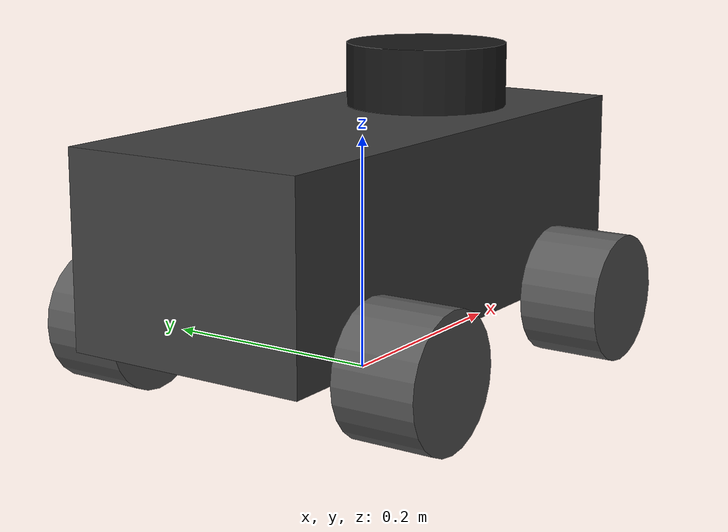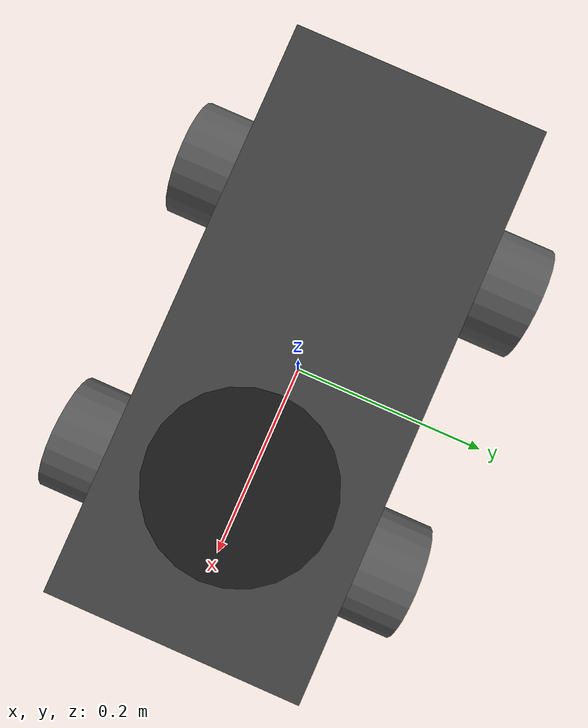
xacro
<?xml version="1.0"?>
<!-- URDF of Robot Simulation -->
<robot xmlns:xacro="http://www.ros.org/wiki/xacro"  name="bot_ackermann">
    <!-- Physical Description -->
    <xacro:include filename="bot_sample.xacro" />
    <!-- Simulation -->
</robot>

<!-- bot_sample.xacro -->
<robot xmlns:xacro="http://www.ros.org/wiki/xacro" name="maverick_quantum_xt">

    <!-- ROBOT PROPERTIES -->
    <xacro:property name="body_mass" value="1.58" />
    <xacro:property name="body_length" value="0.475" />
    <xacro:property name="body_width" value="0.21" />
    <xacro:property name="body_height" value="0.160" />

    <xacro:property name="wheelbase" value="0.285" />
    <xacro:property name="track_width" value="0.280" />

    <xacro:property name="wheel_radius" value="0.055" />
    <xacro:property name="wheel_thickness" value="0.070" />
    <xacro:property name="wheel_mass" value="0.12" />
    <xacro:property name="steering_mass" value="0.02" />

    <!-- max steering = 45 deg -->
    <xacro:property name="max_steering_angle" value="${pi/4}" />

    <xacro:property name="lidar_radius" value="0.070" />
    <xacro:property name="lidar_height" value="0.055" />
    <xacro:property name="lidar_mass" value="0.05" />

    <!-- Derived properties -->
    <xacro:property name="half_body_length" value="${body_length / 2}" />
    <xacro:property name="half_body_height" value="${body_height / 2}" />

    <xacro:property name="half_track_width" value="${track_width / 2}" />
    <xacro:property name="front_axle_offset" value="${wheelbase / 2}" />
    <xacro:property name="rear_axle_offset" value="${-wheelbase / 2}" />

    <!-- BASE FOOTPRINT -->
    <link name="base_footprint">
    </link>

    <!-- BASE LINK -->
    <link name="base_link">
    </link>

    <joint name="base_joint" type="fixed">
        <parent link="base_footprint" />
        <child link="base_link" />
        <origin xyz="0.0 0.0 0.0" rpy="0 0 0" />
    </joint>

    <!-- CHASSIS LINK -->
    <link name="chassis_link">
        <inertial>
            <origin xyz="0.0 0.0 0.0" rpy="0 0 0" />
            <mass value="${body_mass}" />
            <inertia
                ixx="${body_mass/12 * (body_width*body_width + body_height*body_height)}"
                ixy="0" ixz="0"
                iyy="${body_mass/12 * (body_length*body_length + body_height*body_height)}"
                iyz="0"
                izz="${body_mass/12 * (body_length*body_length + body_width*body_width)}" />
        </inertial>

        <visual>
            <origin xyz="0 0 0" rpy="0 0 0" />
            <geometry>
                <box size="${body_length} ${body_width} ${body_height}" />
            </geometry>
            <material name="red">
                <color rgba="0.25 0.25 0.25 1.0"/>
            </material>
        </visual>

        <collision>
            <origin xyz="0 0 0" rpy="0 0 0" />
            <geometry>
                <box size="${body_length} ${body_width} ${body_height}" />
            </geometry>
        </collision>
    </link>

    <joint name="chassis_joint" type="fixed">
        <parent link="base_link" />
        <child link="chassis_link" />
        <!-- chassis center height so wheel centers end up at wheel_radius above ground -->
        <origin xyz=" 0.0 0.0 ${wheel_radius + body_height/2}" rpy="0 0 0" />
    </joint>

    <!-- FRONT LEFT STEERING LINK -->
    <link name="fr_left_steer_link">
        <inertial>
            <origin xyz="0 0 0" rpy="0 0 0" />
            <mass value="${steering_mass}" />
            <inertia
                ixx="${steering_mass/12*(3*wheel_radius*wheel_radius + wheel_thickness*wheel_thickness)}"
                ixy="0" ixz="0"
                iyy="${steering_mass/12*(3*wheel_radius*wheel_radius + wheel_thickness*wheel_thickness)}"
                iyz="0"
                izz="${steering_mass/2 * wheel_radius*wheel_radius}" />
        </inertial>

        <!-- Simple visual so it shows in RViz/Gazebo -->
        <visual>
            <origin xyz="0 0 0" rpy="0 0 0" />
            <geometry>
                <cylinder radius="0.01" length="0.03"/>
            </geometry>
            <material name="steer_red">
                <color rgba="0.8 0.1 0.1 1"/>
            </material>
        </visual>
    </link>

    <joint name="fr_left_steer_joint" type="revolute">
        <parent link="chassis_link" />
        <child link="fr_left_steer_link" />
        <origin xyz="${front_axle_offset} ${half_track_width} ${-body_height/2}" rpy="0 0 0" />
        <axis xyz="0 0 1" />
        <limit upper="${max_steering_angle}" lower="${-max_steering_angle}" effort="10.0" velocity="5.0" />
    </joint>

    <!-- FRONT LEFT WHEEL -->
    <link name="fr_left_wheel_link">
        <inertial>
            <origin xyz="0 0 0" rpy="0 0 0" />
            <mass value="${wheel_mass}" />
            <inertia
                ixx="${wheel_mass/12*(3*wheel_radius*wheel_radius + wheel_thickness*wheel_thickness)}"
                ixy="0" ixz="0"
                iyy="${wheel_mass/12*(3*wheel_radius*wheel_radius + wheel_thickness*wheel_thickness)}"
                iyz="0"
                izz="${wheel_mass/2 * wheel_radius*wheel_radius}" />
        </inertial>

        <visual>
            <origin xyz="0 0 0" rpy="0 0 0" />
            <geometry>
                <cylinder radius="${wheel_radius}" length="${wheel_thickness}" />
            </geometry>
            <material name="wheel_dark">
                <color rgba="0.35 0.35 0.35 1"/>
            </material>
        </visual>

        <collision>
            <origin xyz="0 0 0" rpy="0 0 0" />
            <geometry>
                <cylinder radius="${wheel_radius}" length="${wheel_thickness}" />
            </geometry>
        </collision>
    </link>

    <joint name="fr_left_wheel_joint" type="continuous">
        <parent link="fr_left_steer_link" />
        <child link="fr_left_wheel_link" />
        <origin xyz="0 0 0" rpy="${pi/2} 0 0" />
        <axis xyz="0 0 -1" />
        <dynamics friction="0.8" damping="0.5" />
        <limit lower="-3.14159" upper="3.14159" effort="70" velocity="-1" />
    </joint>

    <!-- FRONT RIGHT STEERING LINK -->
    <link name="fr_right_steer_link">
        <inertial>
            <origin xyz="0 0 0" rpy="0 0 0" />
            <mass value="${steering_mass}" />
            <inertia
                ixx="${steering_mass/12*(3*wheel_radius*wheel_radius + wheel_thickness*wheel_thickness)}"
                ixy="0" ixz="0"
                iyy="${steering_mass/12*(3*wheel_radius*wheel_radius + wheel_thickness*wheel_thickness)}"
                iyz="0"
                izz="${steering_mass/2 * wheel_radius*wheel_radius}" />
        </inertial>

        <!-- Simple visual so it shows in RViz/Gazebo -->
        <visual>
            <origin xyz="0 0 0" rpy="0 0 0" />
            <geometry>
                <cylinder radius="0.01" length="0.03"/>
            </geometry>
            <material name="steer_red2">
                <color rgba="0.8 0.1 0.1 1"/>
            </material>
        </visual>
    </link>

    <joint name="fr_right_steer_joint" type="revolute">
        <parent link="chassis_link" />
        <child link="fr_right_steer_link" />
        <origin xyz="${front_axle_offset} ${-half_track_width} ${-body_height/2}" rpy="0 0 0" />
        <axis xyz="0 0 1" />
        <limit upper="${max_steering_angle}" lower="${-max_steering_angle}" effort="10.0" velocity="5.0" />
    </joint>

    <!-- FRONT RIGHT WHEEL -->
    <link name="fr_right_wheel_link">
        <inertial>
            <origin xyz="0 0 0" rpy="0 0 0" />
            <mass value="${wheel_mass}" />
            <inertia
                ixx="${wheel_mass/12*(3*wheel_radius*wheel_radius + wheel_thickness*wheel_thickness)}"
                ixy="0" ixz="0"
                iyy="${wheel_mass/12*(3*wheel_radius*wheel_radius + wheel_thickness*wheel_thickness)}"
                iyz="0"
                izz="${wheel_mass/2 * wheel_radius*wheel_radius}" />
        </inertial>

        <visual>
            <origin xyz="0 0 0" rpy="0 0 0" />
            <geometry>
                <cylinder radius="${wheel_radius}" length="${wheel_thickness}" />
            </geometry>
            <material name="wheel_dark2">
                <color rgba="0.35 0.35 0.35 1"/>
            </material>
        </visual>

        <collision>
            <origin xyz="0 0 0" rpy="0 0 0" />
            <geometry>
                <cylinder radius="${wheel_radius}" length="${wheel_thickness}" />
            </geometry>
        </collision>
    </link>

    <joint name="fr_right_wheel_joint" type="continuous">
        <parent link="fr_right_steer_link" />
        <child link="fr_right_wheel_link" />
        <origin xyz="0 0 0" rpy="${-pi/2} 0 0" />
        <axis xyz="0 0 1" />
        <dynamics friction="0.8" damping="0.5" />
        <limit lower="-3.14159" upper="3.14159" effort="70" velocity="-1" />
    </joint>

    <!-- REAR LEFT WHEEL -->
    <link name="re_left_wheel_link">
        <inertial>
            <origin xyz="0 0 0" rpy="0 0 0" />
            <mass value="${wheel_mass}" />
            <inertia
                ixx="${wheel_mass/12*(3*wheel_radius*wheel_radius + wheel_thickness*wheel_thickness)}"
                ixy="0" ixz="0"
                iyy="${wheel_mass/12*(3*wheel_radius*wheel_radius + wheel_thickness*wheel_thickness)}"
                iyz="0"
                izz="${wheel_mass/2 * wheel_radius*wheel_radius}" />
        </inertial>

        <visual>
            <origin xyz="0 0 0" rpy="0 0 0" />
            <geometry>
                <cylinder radius="${wheel_radius}" length="${wheel_thickness}" />
            </geometry>
            <material name="wheel_dark3">
                <color rgba="0.35 0.35 0.35 1"/>
            </material>
        </visual>

        <collision>
            <origin xyz="0 0 0" rpy="0 0 0" />
            <geometry>
                <cylinder radius="${wheel_radius}" length="${wheel_thickness}" />
            </geometry>
        </collision>
    </link>

    <joint name="re_left_wheel_joint" type="continuous">
        <parent link="chassis_link" />
        <child link="re_left_wheel_link" />
        <origin xyz="${rear_axle_offset} ${half_track_width} ${-body_height/2}" rpy="${pi/2} 0 0" />
        <axis xyz="0 0 -1" />
        <dynamics friction="0.8" damping="0.5" />
        <limit lower="-3.14159" upper="3.14159" effort="70" velocity="-1" />
    </joint>

    <!-- REAR RIGHT WHEEL -->
    <link name="re_right_wheel_link">
        <inertial>
            <origin xyz="0 0 0" rpy="0 0 0" />
            <mass value="${wheel_mass}" />
            <inertia
                ixx="${wheel_mass/12*(3*wheel_radius*wheel_radius + wheel_thickness*wheel_thickness)}"
                ixy="0" ixz="0"
                iyy="${wheel_mass/12*(3*wheel_radius*wheel_radius + wheel_thickness*wheel_thickness)}"
                iyz="0"
                izz="${wheel_mass/2 * wheel_radius*wheel_radius}" />
        </inertial>

        <visual>
            <origin xyz="0 0 0" rpy="0 0 0" />
            <geometry>
                <cylinder radius="${wheel_radius}" length="${wheel_thickness}" />
            </geometry>
            <material name="wheel_dark4">
                <color rgba="0.35 0.35 0.35 1"/>
            </material>
        </visual>

        <collision>
            <origin xyz="0 0 0" rpy="0 0 0" />
            <geometry>
                <cylinder radius="${wheel_radius}" length="${wheel_thickness}" />
            </geometry>
        </collision>
    </link>

    <joint name="re_right_wheel_joint" type="continuous">
        <parent link="chassis_link" />
        <child link="re_right_wheel_link" />
        <origin xyz="${rear_axle_offset} ${-half_track_width} ${-body_height/2}" rpy="${-pi/2} 0 0" />
        <axis xyz="0 0 1" />
        <dynamics friction="0.8" damping="0.5" />
        <limit lower="-3.14159" upper="3.14159" effort="70" velocity="-1" />
    </joint>

    <!-- LIDAR LINK -->
    <link name="laser_link">
        <inertial>
            <origin xyz="0 0 0" rpy="0 0 0" />
            <mass value="${lidar_mass}" />
            <inertia
                ixx="${lidar_mass/12*(3*lidar_radius*lidar_radius + lidar_height*lidar_height)}"
                ixy="0" ixz="0"
                iyy="${lidar_mass/12*(3*lidar_radius*lidar_radius + lidar_height*lidar_height)}"
                iyz="0"
                izz="${lidar_mass/2 * lidar_radius*lidar_radius}" />
        </inertial>

        <visual>
            <origin xyz="0 0 0" rpy="0 0 0" />
            <geometry>
                <cylinder radius="${lidar_radius}" length="${lidar_height}" />
            </geometry>
            <material name="lidar_black">
                <color rgba="0.1 0.1 0.1 1" />
            </material>
        </visual>

        <collision>
            <origin xyz="0 0 0" rpy="0 0 0" />
            <geometry>
                <cylinder radius="${lidar_radius}" length="${lidar_height}" />
            </geometry>
        </collision>
    </link>

    <joint name="laser_joint" type="fixed">
        <parent link="chassis_link" />
        <child link="laser_link" />
        <!-- LiDAR at front edge + its radius, sitting on top surface -->
        <origin xyz=" 0.1 0.0 ${body_height/2 + lidar_height/2}" rpy="0 0 0" />
    </joint>

    <!-- VIRTUAL STEERING WHEEL -->
    <link name="virtual_steer_link">
        <visual>
            <origin xyz="0.0 0.0 0.0" rpy="0.0 0.0 0.0" />
            <geometry>
                <box size="0.01 0.15 0.075" />
            </geometry>
            <material name="yellow">
                <color rgba="1.0 1.0 0.0 1" />
            </material>
        </visual>
        <inertial>
            <origin xyz="0.0 0.0 0.0" rpy="0.0 0.0 0.0" />
            <mass value="0.001" />
            <inertia ixx="0.0001" ixy="0.0" ixz="0.0"
                     iyy="0.0001" iyz="0.0" izz="0.0001" />
        </inertial>
    </link>

    <joint name="virtual_steering_wheel_joint" type="revolute">
        <origin xyz="${-body_length/2 + 0.05} 0.0 0.0" rpy="0.0 0.0 0.0" />
        <parent link="chassis_link" />
        <child link="virtual_steer_link" />
        <axis xyz="-1 0 0" />
        <limit lower="-3" upper="3" effort="200" velocity="20" />
    </joint>

    <!-- GAZEBO PLUGIN CONFIGURATIONS -->

    <!-- Chassis -->
    <gazebo reference="chassis_link">
        <mu1>0.5</mu1>
        <mu2>0.5</mu2>
        <material>Gazebo/Grey</material>
    </gazebo>

    <!-- Steering links -->
    <gazebo reference="fr_left_steer_link">
        <mu1>0.1</mu1>
        <mu2>0.1</mu2>
        <material>Gazebo/Black</material>
    </gazebo>

    <gazebo reference="fr_right_steer_link">
        <mu1>0.1</mu1>
        <mu2>0.1</mu2>
        <material>Gazebo/Black</material>
    </gazebo>

    <!-- Front wheels -->
    <gazebo reference="fr_left_wheel_link">
        <mu1>1.5</mu1>
        <mu2>1.5</mu2>
        <material>Gazebo/DarkGrey</material>
    </gazebo>

    <gazebo reference="fr_right_wheel_link">
        <mu1>1.5</mu1>
        <mu2>1.5</mu2>
        <material>Gazebo/DarkGrey</material>
    </gazebo>

    <!-- Rear wheels -->
    <gazebo reference="re_left_wheel_link">
        <mu1>1.5</mu1>
        <mu2>1.5</mu2>
        <material>Gazebo/DarkGrey</material>
    </gazebo>

    <gazebo reference="re_right_wheel_link">
        <mu1>1.5</mu1>
        <mu2>1.5</mu2>
        <material>Gazebo/DarkGrey</material>
    </gazebo>

    <!-- Virtual steering wheel -->
    <gazebo reference="virtual_steer_link">
        <material>Gazebo/Yellow</material>
    </gazebo>

    <!-- LiDAR -->
    <gazebo reference="laser_link">
        <material>Gazebo/Black</material>

        <sensor name="gpu_lidar" type="gpu_lidar">
            <pose>0 0 0 0 0 0</pose>
            <visualize>true</visualize>
            <update_rate>10</update_rate>
            <always_on>true</always_on>

            <lidar>
                <scan>
                    <horizontal>
                        <samples>360</samples>
                        <resolution>1</resolution>
                        <min_angle>-3.14159</min_angle>
                        <max_angle>3.14159</max_angle>
                    </horizontal>
                </scan>

                <range>
                    <min>0.3</min>
                    <max>12.0</max>
                    <resolution>0.01</resolution>
                </range>

                <noise>
                    <type>gaussian</type>
                    <mean>0.0</mean>
                    <stddev>0.01</stddev>
                </noise>
            </lidar>

            <topic>/scan</topic>
            <frame_id>laser_link</frame_id>
        </sensor>
    </gazebo>

    <!-- JOINT STATE PUBLISHER PLUGIN -->
    <gazebo>
        <plugin filename="gz-sim-joint-state-publisher-system"
            name="gz::sim::systems::JointStatePublisher">
            <topic>joint_states</topic>
            <update_rate>100</update_rate>
            <joint_name>fr_right_steer_joint</joint_name>
            <joint_name>fr_right_wheel_joint</joint_name>
            <joint_name>fr_left_steer_joint</joint_name>
            <joint_name>fr_left_wheel_joint</joint_name>
            <joint_name>re_right_wheel_joint</joint_name>
            <joint_name>re_left_wheel_joint</joint_name>
            <joint_name>virtual_steering_wheel_joint</joint_name>
        </plugin>
    </gazebo>

    <!-- ACKERMANN DRIVE PLUGIN -->
    <gazebo>
        <plugin filename="gz-sim-ackermann-steering-system"
            name="gz::sim::systems::AckermannSteering">

            <!-- Wheel joints -->
            <left_joint>fr_left_wheel_joint</left_joint>
            <left_joint>re_left_wheel_joint</left_joint>
            <right_joint>fr_right_wheel_joint</right_joint>
            <right_joint>re_right_wheel_joint</right_joint>
            <!-- Steering joints -->
            <left_steering_joint>fr_left_steer_joint</left_steering_joint>
            <right_steering_joint>fr_right_steer_joint</right_steering_joint>
            <steering_joint>virtual_steering_wheel_joint</steering_joint>

            <!-- Wheel parameters -->
            <wheel_separation>${track_width}</wheel_separation>
            <kingpin_width>${track_width}</kingpin_width>
            <wheel_base>${wheelbase}</wheel_base>
            <wheel_radius>${wheel_radius}</wheel_radius>

            <min_velocity>-1</min_velocity>
            <max_velocity>1</max_velocity>

            <!-- Steering limits -->
            <max_steer>${max_steering_angle}</max_steer>
            <max_steering_angle>1.570796</max_steering_angle>

            <!-- Command and odometry topics -->
            <topic>/cmd_vel</topic>
            <odom_topic>/odom</odom_topic>
            <odom_frame>odom</odom_frame>
            <robot_base_frame>base_footprint</robot_base_frame>

            <!-- Publishing options -->
            <publish_odom>true</publish_odom>
            <publish_odom_tf>true</publish_odom_tf>
            <publish_wheel_tf>true</publish_wheel_tf>
        </plugin>
    </gazebo>

</robot>
